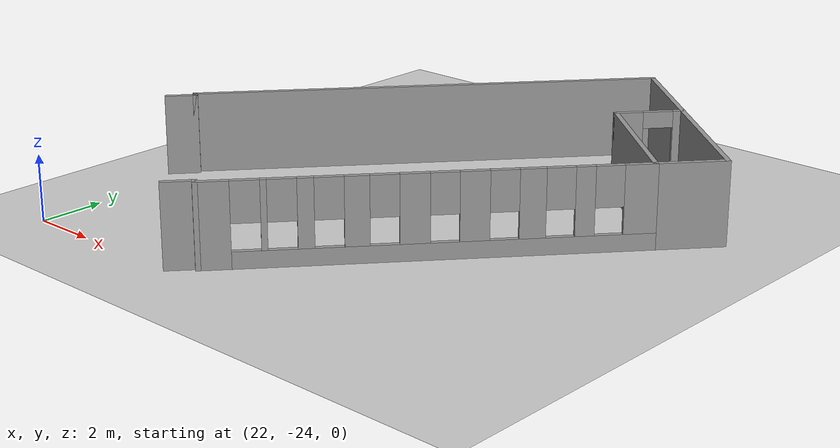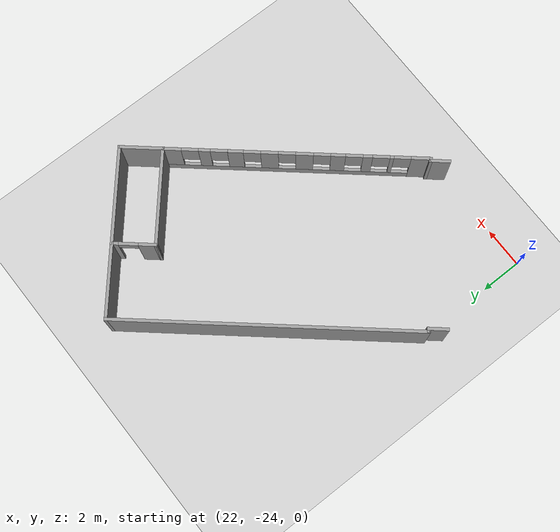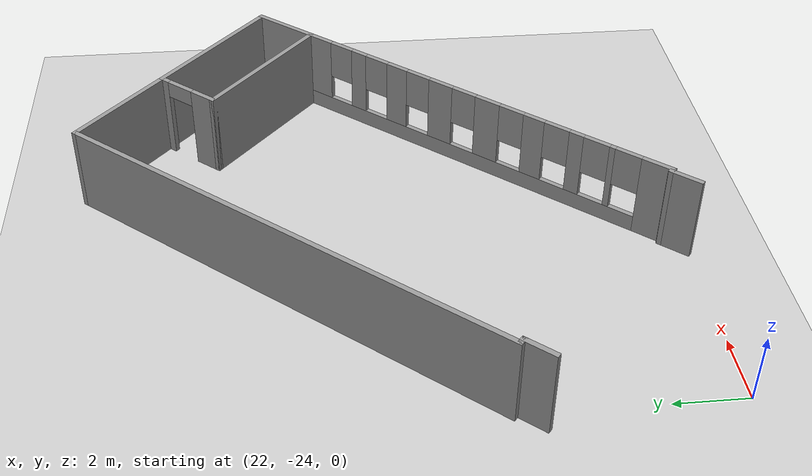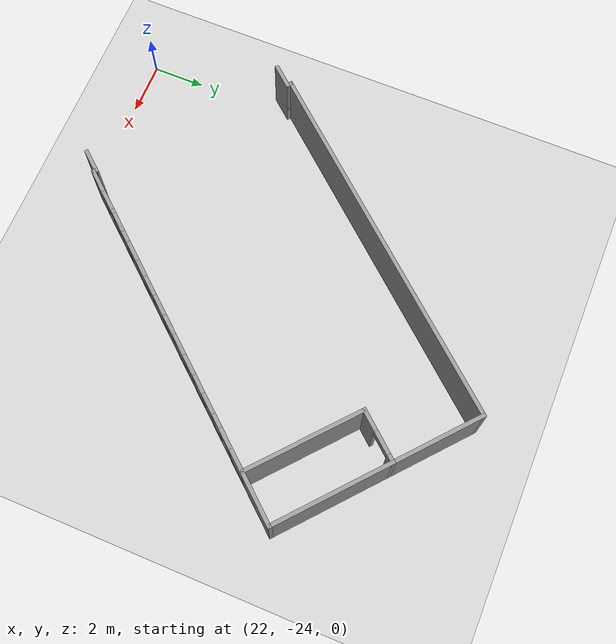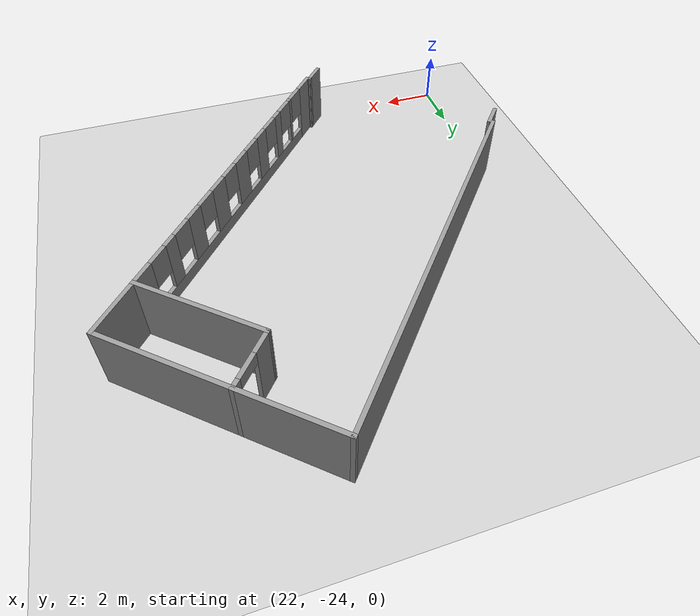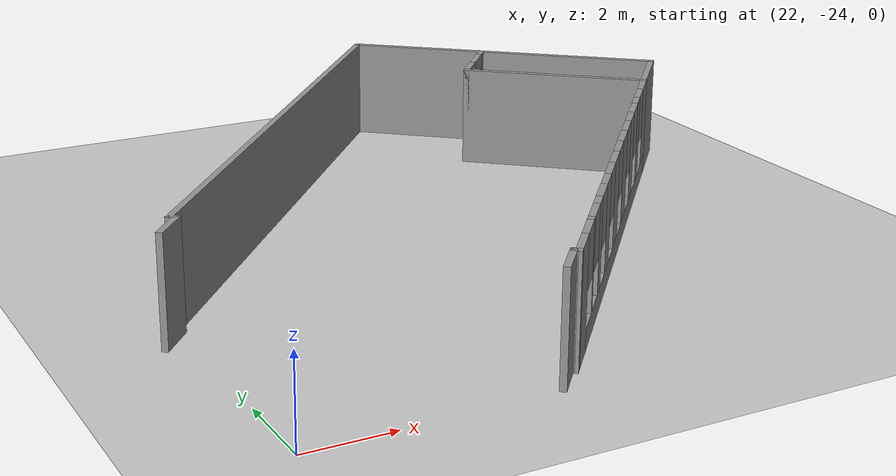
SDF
<sdf version="1.6">
 <world name="default">
  <model name="ground_plane">
   <static>1</static>
   <link name="link">
    <collision name="collision">
     <geometry><plane><normal>0 0 1</normal><size>100 100</size></plane></geometry>
     <surface>
      <contact><collide_bitmask>65535</collide_bitmask></contact>
      <friction><ode><mu>100</mu><mu2>50</mu2></ode></friction>
     </surface>
    </collision>
    <visual name="visual">
     <cast_shadows>0</cast_shadows>
     <geometry><plane><normal>0 0 1</normal><size>100 100</size></plane></geometry>
     <material>
      <script><uri>file://media/materials/scripts/gazebo.material</uri><name>Gazebo/Grey</name></script>
     </material>
    </visual>
   </link>
  </model>
  <model name="1801_new">
   <link name="Wall_23">
    <pose>3.9053 7.17484 0 0 0 -1.5708</pose>
    <visual name="Wall_23_Visual">
     <pose>0 0 1.25 0 -0 0</pose>
     <geometry><box><size>1 0.15 2.5</size></box></geometry>
     <material>
      <script><uri>file://media/materials/scripts/gazebo.material</uri><name>Gazebo/Grey</name></script>
      <ambient>1 1 1 1</ambient>
     </material>
     <meta><layer>0</layer></meta>
    </visual>
    <collision name="Wall_23_Collision">
     <pose>0 0 1.25 0 -0 0</pose>
     <geometry><box><size>1 0.15 2.5</size></box></geometry>
     <surface>
      <friction>
       <ode><mu>1</mu><mu2>1</mu2><fdir1>0 0 0</fdir1><slip1>0</slip1><slip2>0</slip2></ode>
       <torsional>
        <coefficient>1</coefficient>
        <patch_radius>0</patch_radius>
        <surface_radius>0</surface_radius>
        <use_patch_radius>1</use_patch_radius>
        <ode><slip>0</slip></ode>
       </torsional>
      </friction>
      <bounce><restitution_coefficient>0</restitution_coefficient><threshold>1e+06</threshold></bounce>
      <contact>
       <collide_without_contact>0</collide_without_contact>
       <collide_without_contact_bitmask>1</collide_without_contact_bitmask>
       <collide_bitmask>1</collide_bitmask>
       <ode>
        <soft_cfm>0</soft_cfm>
        <soft_erp>0.2</soft_erp>
        <kp>1e+13</kp>
        <kd>1</kd>
        <max_vel>0.01</max_vel>
        <min_depth>0</min_depth>
       </ode>
       <bullet>
        <split_impulse>1</split_impulse>
        <split_impulse_penetration_threshold>-0.01</split_impulse_penetration_threshold>
        <soft_cfm>0</soft_cfm>
        <soft_erp>0.2</soft_erp>
        <kp>1e+13</kp>
        <kd>1</kd>
       </bullet>
      </contact>
     </surface>
    </collision>
   </link>
   <link name="Wall_25">
    <pose>3.9553 6.74984 0 0 -0 0</pose>
    <visual name="Wall_25_Visual">
     <pose>0 0 1.25 0 -0 0</pose>
     <geometry><box><size>0.25 0.15 2.5</size></box></geometry>
     <material>
      <script><uri>file://media/materials/scripts/gazebo.material</uri><name>Gazebo/Grey</name></script>
      <ambient>1 1 1 1</ambient>
     </material>
     <meta><layer>0</layer></meta>
    </visual>
    <collision name="Wall_25_Collision">
     <pose>0 0 1.25 0 -0 0</pose>
     <geometry><box><size>0.25 0.15 2.5</size></box></geometry>
     <surface>
      <friction>
       <ode><mu>1</mu><mu2>1</mu2><fdir1>0 0 0</fdir1><slip1>0</slip1><slip2>0</slip2></ode>
       <torsional>
        <coefficient>1</coefficient>
        <patch_radius>0</patch_radius>
        <surface_radius>0</surface_radius>
        <use_patch_radius>1</use_patch_radius>
        <ode><slip>0</slip></ode>
       </torsional>
      </friction>
      <bounce><restitution_coefficient>0</restitution_coefficient><threshold>1e+06</threshold></bounce>
      <contact>
       <collide_without_contact>0</collide_without_contact>
       <collide_without_contact_bitmask>1</collide_without_contact_bitmask>
       <collide_bitmask>1</collide_bitmask>
       <ode>
        <soft_cfm>0</soft_cfm>
        <soft_erp>0.2</soft_erp>
        <kp>1e+13</kp>
        <kd>1</kd>
        <max_vel>0.01</max_vel>
        <min_depth>0</min_depth>
       </ode>
       <bullet>
        <split_impulse>1</split_impulse>
        <split_impulse_penetration_threshold>-0.01</split_impulse_penetration_threshold>
        <soft_cfm>0</soft_cfm>
        <soft_erp>0.2</soft_erp>
        <kp>1e+13</kp>
        <kd>1</kd>
       </bullet>
      </contact>
     </surface>
    </collision>
   </link>
   <link name="Wall_27">
    <pose>-3.9447 7.17484 0 0 0 -1.5708</pose>
    <visual name="Wall_27_Visual">
     <pose>0 0 1.25 0 -0 0</pose>
     <geometry><box><size>1 0.15 2.5</size></box></geometry>
     <material>
      <script><uri>file://media/materials/scripts/gazebo.material</uri><name>Gazebo/Grey</name></script>
      <ambient>1 1 1 1</ambient>
     </material>
     <meta><layer>0</layer></meta>
    </visual>
    <collision name="Wall_27_Collision">
     <pose>0 0 1.25 0 -0 0</pose>
     <geometry><box><size>1 0.15 2.5</size></box></geometry>
     <surface>
      <friction>
       <ode><mu>1</mu><mu2>1</mu2><fdir1>0 0 0</fdir1><slip1>0</slip1><slip2>0</slip2></ode>
       <torsional>
        <coefficient>1</coefficient>
        <patch_radius>0</patch_radius>
        <surface_radius>0</surface_radius>
        <use_patch_radius>1</use_patch_radius>
        <ode><slip>0</slip></ode>
       </torsional>
      </friction>
      <bounce><restitution_coefficient>0</restitution_coefficient><threshold>1e+06</threshold></bounce>
      <contact>
       <collide_without_contact>0</collide_without_contact>
       <collide_without_contact_bitmask>1</collide_without_contact_bitmask>
       <collide_bitmask>1</collide_bitmask>
       <ode>
        <soft_cfm>0</soft_cfm>
        <soft_erp>0.2</soft_erp>
        <kp>1e+13</kp>
        <kd>1</kd>
        <max_vel>0.01</max_vel>
        <min_depth>0</min_depth>
       </ode>
       <bullet>
        <split_impulse>1</split_impulse>
        <split_impulse_penetration_threshold>-0.01</split_impulse_penetration_threshold>
        <soft_cfm>0</soft_cfm>
        <soft_erp>0.2</soft_erp>
        <kp>1e+13</kp>
        <kd>1</kd>
       </bullet>
      </contact>
     </surface>
    </collision>
   </link>
   <link name="Wall_28">
    <pose>-3.99448 6.75002 0 0 -0 3.13811</pose>
    <visual name="Wall_28_Visual">
     <pose>0 0 1.25 0 -0 0</pose>
     <geometry><box><size>0.25 0.15 2.5</size></box></geometry>
     <material>
      <script><uri>file://media/materials/scripts/gazebo.material</uri><name>Gazebo/Grey</name></script>
      <ambient>1 1 1 1</ambient>
     </material>
     <meta><layer>0</layer></meta>
    </visual>
    <collision name="Wall_28_Collision">
     <pose>0 0 1.25 0 -0 0</pose>
     <geometry><box><size>0.25 0.15 2.5</size></box></geometry>
     <surface>
      <friction>
       <ode><mu>1</mu><mu2>1</mu2><fdir1>0 0 0</fdir1><slip1>0</slip1><slip2>0</slip2></ode>
       <torsional>
        <coefficient>1</coefficient>
        <patch_radius>0</patch_radius>
        <surface_radius>0</surface_radius>
        <use_patch_radius>1</use_patch_radius>
        <ode><slip>0</slip></ode>
       </torsional>
      </friction>
      <bounce><restitution_coefficient>0</restitution_coefficient><threshold>1e+06</threshold></bounce>
      <contact>
       <collide_without_contact>0</collide_without_contact>
       <collide_without_contact_bitmask>1</collide_without_contact_bitmask>
       <collide_bitmask>1</collide_bitmask>
       <ode>
        <soft_cfm>0</soft_cfm>
        <soft_erp>0.2</soft_erp>
        <kp>1e+13</kp>
        <kd>1</kd>
        <max_vel>0.01</max_vel>
        <min_depth>0</min_depth>
       </ode>
       <bullet>
        <split_impulse>1</split_impulse>
        <split_impulse_penetration_threshold>-0.01</split_impulse_penetration_threshold>
        <soft_cfm>0</soft_cfm>
        <soft_erp>0.2</soft_erp>
        <kp>1e+13</kp>
        <kd>1</kd>
       </bullet>
      </contact>
     </surface>
    </collision>
   </link>
   <link name="Wall_29">
    <pose>-4.04426 0.575187 0 0 0 -1.5708</pose>
    <visual name="Wall_29_Visual_0">
     <pose>-5.76562 0 1.25 0 -0 0</pose>
     <geometry><box><size>0.968761 0.15 2.5</size></box></geometry>
     <material>
      <script><uri>file://media/materials/scripts/gazebo.material</uri><name>Gazebo/Grey</name></script>
      <ambient>1 1 1 1</ambient>
     </material>
     <meta><layer>0</layer></meta>
    </visual>
    <visual name="Wall_29_Visual_1">
     <pose>0.48438 0 0.25 0 -0 0</pose>
     <geometry><box><size>11.5312 0.15 0.5</size></box></geometry>
     <material>
      <script><uri>file://media/materials/scripts/gazebo.material</uri><name>Gazebo/Grey</name></script>
      <ambient>1 1 1 1</ambient>
     </material>
     <meta><layer>0</layer></meta>
    </visual>
    <visual name="Wall_29_Visual_2">
     <pose>-4.3955 0 1.5 0 -0 0</pose>
     <geometry><box><size>0.171486 0.15 2</size></box></geometry>
     <material>
      <script><uri>file://media/materials/scripts/gazebo.material</uri><name>Gazebo/Grey</name></script>
      <ambient>1 1 1 1</ambient>
     </material>
     <meta><layer>0</layer></meta>
    </visual>
    <visual name="Wall_29_Visual_3">
     <pose>-3.28523 0 1.5 0 -0 0</pose>
     <geometry><box><size>0.449053 0.15 2</size></box></geometry>
     <material>
      <script><uri>file://media/materials/scripts/gazebo.material</uri><name>Gazebo/Grey</name></script>
      <ambient>1 1 1 1</ambient>
     </material>
     <meta><layer>0</layer></meta>
    </visual>
    <visual name="Wall_29_Visual_4">
     <pose>-1.92052 0 1.5 0 -0 0</pose>
     <geometry><box><size>0.680359 0.15 2</size></box></geometry>
     <material>
      <script><uri>file://media/materials/scripts/gazebo.material</uri><name>Gazebo/Grey</name></script>
      <ambient>1 1 1 1</ambient>
     </material>
     <meta><layer>0</layer></meta>
    </visual>
    <visual name="Wall_29_Visual_5">
     <pose>-0.37077 0 1.5 0 -0 0</pose>
     <geometry><box><size>0.819143 0.15 2</size></box></geometry>
     <material>
      <script><uri>file://media/materials/scripts/gazebo.material</uri><name>Gazebo/Grey</name></script>
      <ambient>1 1 1 1</ambient>
     </material>
     <meta><layer>0</layer></meta>
    </visual>
    <visual name="Wall_29_Visual_6">
     <pose>1.24837 0 1.5 0 -0 0</pose>
     <geometry><box><size>0.819143 0.15 2</size></box></geometry>
     <material>
      <script><uri>file://media/materials/scripts/gazebo.material</uri><name>Gazebo/Grey</name></script>
      <ambient>1 1 1 1</ambient>
     </material>
     <meta><layer>0</layer></meta>
    </visual>
    <visual name="Wall_29_Visual_7">
     <pose>2.82125 0 1.5 0 -0 0</pose>
     <geometry><box><size>0.72662 0.15 2</size></box></geometry>
     <material>
      <script><uri>file://media/materials/scripts/gazebo.material</uri><name>Gazebo/Grey</name></script>
      <ambient>1 1 1 1</ambient>
     </material>
     <meta><layer>0</layer></meta>
    </visual>
    <visual name="Wall_29_Visual_8">
     <pose>4.25535 0 1.5 0 -0 0</pose>
     <geometry><box><size>0.541576 0.15 2</size></box></geometry>
     <material>
      <script><uri>file://media/materials/scripts/gazebo.material</uri><name>Gazebo/Grey</name></script>
      <ambient>1 1 1 1</ambient>
     </material>
     <meta><layer>0</layer></meta>
    </visual>
    <visual name="Wall_29_Visual_9">
     <pose>5.78807 0 1.5 0 -0 0</pose>
     <geometry><box><size>0.923861 0.15 2</size></box></geometry>
     <material>
      <script><uri>file://media/materials/scripts/gazebo.material</uri><name>Gazebo/Grey</name></script>
      <ambient>1 1 1 1</ambient>
     </material>
     <meta><layer>0</layer></meta>
    </visual>
    <visual name="Wall_29_Visual_10">
     <pose>-4.88124 0 1.9 0 -0 0</pose>
     <geometry><box><size>0.8 0.15 1.2</size></box></geometry>
     <material>
      <script><uri>file://media/materials/scripts/gazebo.material</uri><name>Gazebo/Grey</name></script>
      <ambient>1 1 1 1</ambient>
     </material>
     <meta><layer>0</layer></meta>
    </visual>
    <visual name="Wall_29_Visual_11">
     <pose>-3.90975 0 1.9 0 -0 0</pose>
     <geometry><box><size>0.8 0.15 1.2</size></box></geometry>
     <material>
      <script><uri>file://media/materials/scripts/gazebo.material</uri><name>Gazebo/Grey</name></script>
      <ambient>1 1 1 1</ambient>
     </material>
     <meta><layer>0</layer></meta>
    </visual>
    <visual name="Wall_29_Visual_12">
     <pose>-2.6607 0 1.9 0 -0 0</pose>
     <geometry><box><size>0.8 0.15 1.2</size></box></geometry>
     <material>
      <script><uri>file://media/materials/scripts/gazebo.material</uri><name>Gazebo/Grey</name></script>
      <ambient>1 1 1 1</ambient>
     </material>
     <meta><layer>0</layer></meta>
    </visual>
    <visual name="Wall_29_Visual_13">
     <pose>-1.18034 0 1.9 0 -0 0</pose>
     <geometry><box><size>0.8 0.15 1.2</size></box></geometry>
     <material>
      <script><uri>file://media/materials/scripts/gazebo.material</uri><name>Gazebo/Grey</name></script>
      <ambient>1 1 1 1</ambient>
     </material>
     <meta><layer>0</layer></meta>
    </visual>
    <visual name="Wall_29_Visual_14">
     <pose>0.438801 0 1.9 0 -0 0</pose>
     <geometry><box><size>0.8 0.15 1.2</size></box></geometry>
     <material>
      <script><uri>file://media/materials/scripts/gazebo.material</uri><name>Gazebo/Grey</name></script>
      <ambient>1 1 1 1</ambient>
     </material>
     <meta><layer>0</layer></meta>
    </visual>
    <visual name="Wall_29_Visual_15">
     <pose>2.05794 0 1.9 0 -0 0</pose>
     <geometry><box><size>0.8 0.15 1.2</size></box></geometry>
     <material>
      <script><uri>file://media/materials/scripts/gazebo.material</uri><name>Gazebo/Grey</name></script>
      <ambient>1 1 1 1</ambient>
     </material>
     <meta><layer>0</layer></meta>
    </visual>
    <visual name="Wall_29_Visual_16">
     <pose>3.58456 0 1.9 0 -0 0</pose>
     <geometry><box><size>0.8 0.15 1.2</size></box></geometry>
     <material>
      <script><uri>file://media/materials/scripts/gazebo.material</uri><name>Gazebo/Grey</name></script>
      <ambient>1 1 1 1</ambient>
     </material>
     <meta><layer>0</layer></meta>
    </visual>
    <visual name="Wall_29_Visual_17">
     <pose>4.92614 0 1.9 0 -0 0</pose>
     <geometry><box><size>0.8 0.15 1.2</size></box></geometry>
     <material>
      <script><uri>file://media/materials/scripts/gazebo.material</uri><name>Gazebo/Grey</name></script>
      <ambient>1 1 1 1</ambient>
     </material>
     <meta><layer>0</layer></meta>
    </visual>
    <collision name="Wall_29_Collision_0">
     <pose>-5.76562 0 1.25 0 -0 0</pose>
     <geometry><box><size>0.968761 0.15 2.5</size></box></geometry>
     <surface>
      <friction>
       <ode><mu>1</mu><mu2>1</mu2><fdir1>0 0 0</fdir1><slip1>0</slip1><slip2>0</slip2></ode>
       <torsional>
        <coefficient>1</coefficient>
        <patch_radius>0</patch_radius>
        <surface_radius>0</surface_radius>
        <use_patch_radius>1</use_patch_radius>
        <ode><slip>0</slip></ode>
       </torsional>
      </friction>
      <bounce><restitution_coefficient>0</restitution_coefficient><threshold>1e+06</threshold></bounce>
      <contact>
       <collide_without_contact>0</collide_without_contact>
       <collide_without_contact_bitmask>1</collide_without_contact_bitmask>
       <collide_bitmask>1</collide_bitmask>
       <ode>
        <soft_cfm>0</soft_cfm>
        <soft_erp>0.2</soft_erp>
        <kp>1e+13</kp>
        <kd>1</kd>
        <max_vel>0.01</max_vel>
        <min_depth>0</min_depth>
       </ode>
       <bullet>
        <split_impulse>1</split_impulse>
        <split_impulse_penetration_threshold>-0.01</split_impulse_penetration_threshold>
        <soft_cfm>0</soft_cfm>
        <soft_erp>0.2</soft_erp>
        <kp>1e+13</kp>
        <kd>1</kd>
       </bullet>
      </contact>
     </surface>
    </collision>
    <collision name="Wall_29_Collision_1">
     <pose>0.48438 0 0.25 0 -0 0</pose>
     <geometry><box><size>11.5312 0.15 0.5</size></box></geometry>
     <surface>
      <friction>
       <ode><mu>1</mu><mu2>1</mu2><fdir1>0 0 0</fdir1><slip1>0</slip1><slip2>0</slip2></ode>
       <torsional>
        <coefficient>1</coefficient>
        <patch_radius>0</patch_radius>
        <surface_radius>0</surface_radius>
        <use_patch_radius>1</use_patch_radius>
        <ode><slip>0</slip></ode>
       </torsional>
      </friction>
      <bounce><restitution_coefficient>0</restitution_coefficient><threshold>1e+06</threshold></bounce>
      <contact>
       <collide_without_contact>0</collide_without_contact>
       <collide_without_contact_bitmask>1</collide_without_contact_bitmask>
       <collide_bitmask>1</collide_bitmask>
       <ode>
        <soft_cfm>0</soft_cfm>
        <soft_erp>0.2</soft_erp>
        <kp>1e+13</kp>
        <kd>1</kd>
        <max_vel>0.01</max_vel>
        <min_depth>0</min_depth>
       </ode>
       <bullet>
        <split_impulse>1</split_impulse>
        <split_impulse_penetration_threshold>-0.01</split_impulse_penetration_threshold>
        <soft_cfm>0</soft_cfm>
        <soft_erp>0.2</soft_erp>
        <kp>1e+13</kp>
        <kd>1</kd>
       </bullet>
      </contact>
     </surface>
    </collision>
    <collision name="Wall_29_Collision_2">
     <pose>-4.3955 0 1.5 0 -0 0</pose>
     <geometry><box><size>0.171486 0.15 2</size></box></geometry>
     <surface>
      <friction>
       <ode><mu>1</mu><mu2>1</mu2><fdir1>0 0 0</fdir1><slip1>0</slip1><slip2>0</slip2></ode>
       <torsional>
        <coefficient>1</coefficient>
        <patch_radius>0</patch_radius>
        <surface_radius>0</surface_radius>
        <use_patch_radius>1</use_patch_radius>
        <ode><slip>0</slip></ode>
       </torsional>
      </friction>
      <bounce><restitution_coefficient>0</restitution_coefficient><threshold>1e+06</threshold></bounce>
      <contact>
       <collide_without_contact>0</collide_without_contact>
       <collide_without_contact_bitmask>1</collide_without_contact_bitmask>
       <collide_bitmask>1</collide_bitmask>
       <ode>
        <soft_cfm>0</soft_cfm>
        <soft_erp>0.2</soft_erp>
        <kp>1e+13</kp>
        <kd>1</kd>
        <max_vel>0.01</max_vel>
        <min_depth>0</min_depth>
       </ode>
       <bullet>
        <split_impulse>1</split_impulse>
        <split_impulse_penetration_threshold>-0.01</split_impulse_penetration_threshold>
        <soft_cfm>0</soft_cfm>
        <soft_erp>0.2</soft_erp>
        <kp>1e+13</kp>
        <kd>1</kd>
       </bullet>
      </contact>
     </surface>
    </collision>
    <collision name="Wall_29_Collision_3">
     <pose>-3.28523 0 1.5 0 -0 0</pose>
     <geometry><box><size>0.449053 0.15 2</size></box></geometry>
     <surface>
      <friction>
       <ode><mu>1</mu><mu2>1</mu2><fdir1>0 0 0</fdir1><slip1>0</slip1><slip2>0</slip2></ode>
       <torsional>
        <coefficient>1</coefficient>
        <patch_radius>0</patch_radius>
        <surface_radius>0</surface_radius>
        <use_patch_radius>1</use_patch_radius>
        <ode><slip>0</slip></ode>
       </torsional>
      </friction>
      <bounce><restitution_coefficient>0</restitution_coefficient><threshold>1e+06</threshold></bounce>
      <contact>
       <collide_without_contact>0</collide_without_contact>
       <collide_without_contact_bitmask>1</collide_without_contact_bitmask>
       <collide_bitmask>1</collide_bitmask>
       <ode>
        <soft_cfm>0</soft_cfm>
        <soft_erp>0.2</soft_erp>
        <kp>1e+13</kp>
        <kd>1</kd>
        <max_vel>0.01</max_vel>
        <min_depth>0</min_depth>
       </ode>
       <bullet>
        <split_impulse>1</split_impulse>
        <split_impulse_penetration_threshold>-0.01</split_impulse_penetration_threshold>
        <soft_cfm>0</soft_cfm>
        <soft_erp>0.2</soft_erp>
        <kp>1e+13</kp>
        <kd>1</kd>
       </bullet>
      </contact>
     </surface>
    </collision>
    <collision name="Wall_29_Collision_4">
     <pose>-1.92052 0 1.5 0 -0 0</pose>
     <geometry><box><size>0.680359 0.15 2</size></box></geometry>
     <surface>
      <friction>
       <ode><mu>1</mu><mu2>1</mu2><fdir1>0 0 0</fdir1><slip1>0</slip1><slip2>0</slip2></ode>
       <torsional>
        <coefficient>1</coefficient>
        <patch_radius>0</patch_radius>
        <surface_radius>0</surface_radius>
        <use_patch_radius>1</use_patch_radius>
        <ode><slip>0</slip></ode>
       </torsional>
      </friction>
      <bounce><restitution_coefficient>0</restitution_coefficient><threshold>1e+06</threshold></bounce>
      <contact>
       <collide_without_contact>0</collide_without_contact>
       <collide_without_contact_bitmask>1</collide_without_contact_bitmask>
       <collide_bitmask>1</collide_bitmask>
       <ode>
        <soft_cfm>0</soft_cfm>
        <soft_erp>0.2</soft_erp>
        <kp>1e+13</kp>
        <kd>1</kd>
        <max_vel>0.01</max_vel>
        <min_depth>0</min_depth>
       </ode>
       <bullet>
        <split_impulse>1</split_impulse>
        <split_impulse_penetration_threshold>-0.01</split_impulse_penetration_threshold>
        <soft_cfm>0</soft_cfm>
        <soft_erp>0.2</soft_erp>
        <kp>1e+13</kp>
        <kd>1</kd>
       </bullet>
      </contact>
     </surface>
    </collision>
    <collision name="Wall_29_Collision_5">
     <pose>-0.37077 0 1.5 0 -0 0</pose>
     <geometry><box><size>0.819143 0.15 2</size></box></geometry>
     <surface>
      <friction>
       <ode><mu>1</mu><mu2>1</mu2><fdir1>0 0 0</fdir1><slip1>0</slip1><slip2>0</slip2></ode>
       <torsional>
        <coefficient>1</coefficient>
        <patch_radius>0</patch_radius>
        <surface_radius>0</surface_radius>
        <use_patch_radius>1</use_patch_radius>
        <ode><slip>0</slip></ode>
       </torsional>
      </friction>
      <bounce><restitution_coefficient>0</restitution_coefficient><threshold>1e+06</threshold></bounce>
      <contact>
       <collide_without_contact>0</collide_without_contact>
       <collide_without_contact_bitmask>1</collide_without_contact_bitmask>
       <collide_bitmask>1</collide_bitmask>
       <ode>
        <soft_cfm>0</soft_cfm>
        <soft_erp>0.2</soft_erp>
        <kp>1e+13</kp>
        <kd>1</kd>
        <max_vel>0.01</max_vel>
        <min_depth>0</min_depth>
       </ode>
       <bullet>
        <split_impulse>1</split_impulse>
        <split_impulse_penetration_threshold>-0.01</split_impulse_penetration_threshold>
        <soft_cfm>0</soft_cfm>
        <soft_erp>0.2</soft_erp>
        <kp>1e+13</kp>
        <kd>1</kd>
       </bullet>
      </contact>
     </surface>
    </collision>
    <collision name="Wall_29_Collision_6">
     <pose>1.24837 0 1.5 0 -0 0</pose>
     <geometry><box><size>0.819143 0.15 2</size></box></geometry>
     <surface>
      <friction>
       <ode><mu>1</mu><mu2>1</mu2><fdir1>0 0 0</fdir1><slip1>0</slip1><slip2>0</slip2></ode>
       <torsional>
        <coefficient>1</coefficient>
        <patch_radius>0</patch_radius>
        <surface_radius>0</surface_radius>
        <use_patch_radius>1</use_patch_radius>
        <ode><slip>0</slip></ode>
       </torsional>
      </friction>
      <bounce><restitution_coefficient>0</restitution_coefficient><threshold>1e+06</threshold></bounce>
      <contact>
       <collide_without_contact>0</collide_without_contact>
       <collide_without_contact_bitmask>1</collide_without_contact_bitmask>
       <collide_bitmask>1</collide_bitmask>
       <ode>
        <soft_cfm>0</soft_cfm>
        <soft_erp>0.2</soft_erp>
        <kp>1e+13</kp>
        <kd>1</kd>
        <max_vel>0.01</max_vel>
        <min_depth>0</min_depth>
       </ode>
       <bullet>
        <split_impulse>1</split_impulse>
        <split_impulse_penetration_threshold>-0.01</split_impulse_penetration_threshold>
        <soft_cfm>0</soft_cfm>
        <soft_erp>0.2</soft_erp>
        <kp>1e+13</kp>
        <kd>1</kd>
       </bullet>
      </contact>
     </surface>
    </collision>
    <collision name="Wall_29_Collision_7">
     <pose>2.82125 0 1.5 0 -0 0</pose>
     <geometry><box><size>0.72662 0.15 2</size></box></geometry>
     <surface>
      <friction>
       <ode><mu>1</mu><mu2>1</mu2><fdir1>0 0 0</fdir1><slip1>0</slip1><slip2>0</slip2></ode>
       <torsional>
        <coefficient>1</coefficient>
        <patch_radius>0</patch_radius>
        <surface_radius>0</surface_radius>
        <use_patch_radius>1</use_patch_radius>
        <ode><slip>0</slip></ode>
       </torsional>
      </friction>
      <bounce><restitution_coefficient>0</restitution_coefficient><threshold>1e+06</threshold></bounce>
      <contact>
       <collide_without_contact>0</collide_without_contact>
       <collide_without_contact_bitmask>1</collide_without_contact_bitmask>
       <collide_bitmask>1</collide_bitmask>
       <ode>
        <soft_cfm>0</soft_cfm>
        <soft_erp>0.2</soft_erp>
        <kp>1e+13</kp>
        <kd>1</kd>
        <max_vel>0.01</max_vel>
        <min_depth>0</min_depth>
       </ode>
       <bullet>
        <split_impulse>1</split_impulse>
        <split_impulse_penetration_threshold>-0.01</split_impulse_penetration_threshold>
        <soft_cfm>0</soft_cfm>
        <soft_erp>0.2</soft_erp>
        <kp>1e+13</kp>
        <kd>1</kd>
       </bullet>
      </contact>
     </surface>
    </collision>
    <collision name="Wall_29_Collision_8">
     <pose>4.25535 0 1.5 0 -0 0</pose>
     <geometry><box><size>0.541576 0.15 2</size></box></geometry>
     <surface>
      <friction>
       <ode><mu>1</mu><mu2>1</mu2><fdir1>0 0 0</fdir1><slip1>0</slip1><slip2>0</slip2></ode>
       <torsional>
        <coefficient>1</coefficient>
        <patch_radius>0</patch_radius>
        <surface_radius>0</surface_radius>
        <use_patch_radius>1</use_patch_radius>
        <ode><slip>0</slip></ode>
       </torsional>
      </friction>
      <bounce><restitution_coefficient>0</restitution_coefficient><threshold>1e+06</threshold></bounce>
      <contact>
       <collide_without_contact>0</collide_without_contact>
       <collide_without_contact_bitmask>1</collide_without_contact_bitmask>
       <collide_bitmask>1</collide_bitmask>
       <ode>
        <soft_cfm>0</soft_cfm>
        <soft_erp>0.2</soft_erp>
        <kp>1e+13</kp>
        <kd>1</kd>
        <max_vel>0.01</max_vel>
        <min_depth>0</min_depth>
       </ode>
       <bullet>
        <split_impulse>1</split_impulse>
        <split_impulse_penetration_threshold>-0.01</split_impulse_penetration_threshold>
        <soft_cfm>0</soft_cfm>
        <soft_erp>0.2</soft_erp>
        <kp>1e+13</kp>
        <kd>1</kd>
       </bullet>
      </contact>
     </surface>
    </collision>
    <collision name="Wall_29_Collision_9">
     <pose>5.78807 0 1.5 0 -0 0</pose>
     <geometry><box><size>0.923861 0.15 2</size></box></geometry>
     <surface>
      <friction>
       <ode><mu>1</mu><mu2>1</mu2><fdir1>0 0 0</fdir1><slip1>0</slip1><slip2>0</slip2></ode>
       <torsional>
        <coefficient>1</coefficient>
        <patch_radius>0</patch_radius>
        <surface_radius>0</surface_radius>
        <use_patch_radius>1</use_patch_radius>
        <ode><slip>0</slip></ode>
       </torsional>
      </friction>
      <bounce><restitution_coefficient>0</restitution_coefficient><threshold>1e+06</threshold></bounce>
      <contact>
       <collide_without_contact>0</collide_without_contact>
       <collide_without_contact_bitmask>1</collide_without_contact_bitmask>
       <collide_bitmask>1</collide_bitmask>
       <ode>
        <soft_cfm>0</soft_cfm>
        <soft_erp>0.2</soft_erp>
        <kp>1e+13</kp>
        <kd>1</kd>
        <max_vel>0.01</max_vel>
        <min_depth>0</min_depth>
       </ode>
       <bullet>
        <split_impulse>1</split_impulse>
        <split_impulse_penetration_threshold>-0.01</split_impulse_penetration_threshold>
        <soft_cfm>0</soft_cfm>
        <soft_erp>0.2</soft_erp>
        <kp>1e+13</kp>
        <kd>1</kd>
       </bullet>
      </contact>
     </surface>
    </collision>
    <collision name="Wall_29_Collision_10">
     <pose>-4.88124 0 1.9 0 -0 0</pose>
     <geometry><box><size>0.8 0.15 1.2</size></box></geometry>
     <surface>
      <friction>
       <ode><mu>1</mu><mu2>1</mu2><fdir1>0 0 0</fdir1><slip1>0</slip1><slip2>0</slip2></ode>
       <torsional>
        <coefficient>1</coefficient>
        <patch_radius>0</patch_radius>
        <surface_radius>0</surface_radius>
        <use_patch_radius>1</use_patch_radius>
        <ode><slip>0</slip></ode>
       </torsional>
      </friction>
      <bounce><restitution_coefficient>0</restitution_coefficient><threshold>1e+06</threshold></bounce>
      <contact>
       <collide_without_contact>0</collide_without_contact>
       <collide_without_contact_bitmask>1</collide_without_contact_bitmask>
       <collide_bitmask>1</collide_bitmask>
       <ode>
        <soft_cfm>0</soft_cfm>
        <soft_erp>0.2</soft_erp>
        <kp>1e+13</kp>
        <kd>1</kd>
        <max_vel>0.01</max_vel>
        <min_depth>0</min_depth>
       </ode>
       <bullet>
        <split_impulse>1</split_impulse>
        <split_impulse_penetration_threshold>-0.01</split_impulse_penetration_threshold>
        <soft_cfm>0</soft_cfm>
        <soft_erp>0.2</soft_erp>
        <kp>1e+13</kp>
        <kd>1</kd>
       </bullet>
      </contact>
     </surface>
    </collision>
    <collision name="Wall_29_Collision_11">
     <pose>-3.90975 0 1.9 0 -0 0</pose>
     <geometry><box><size>0.8 0.15 1.2</size></box></geometry>
     <surface>
      <friction>
       <ode><mu>1</mu><mu2>1</mu2><fdir1>0 0 0</fdir1><slip1>0</slip1><slip2>0</slip2></ode>
       <torsional>
        <coefficient>1</coefficient>
        <patch_radius>0</patch_radius>
        <surface_radius>0</surface_radius>
        <use_patch_radius>1</use_patch_radius>
        <ode><slip>0</slip></ode>
       </torsional>
      </friction>
      <bounce><restitution_coefficient>0</restitution_coefficient><threshold>1e+06</threshold></bounce>
      <contact>
       <collide_without_contact>0</collide_without_contact>
       <collide_without_contact_bitmask>1</collide_without_contact_bitmask>
       <collide_bitmask>1</collide_bitmask>
       <ode>
        <soft_cfm>0</soft_cfm>
        <soft_erp>0.2</soft_erp>
        <kp>1e+13</kp>
        <kd>1</kd>
        <max_vel>0.01</max_vel>
        <min_depth>0</min_depth>
       </ode>
       <bullet>
        <split_impulse>1</split_impulse>
        <split_impulse_penetration_threshold>-0.01</split_impulse_penetration_threshold>
        <soft_cfm>0</soft_cfm>
        <soft_erp>0.2</soft_erp>
        <kp>1e+13</kp>
        <kd>1</kd>
       </bullet>
      </contact>
     </surface>
    </collision>
    <collision name="Wall_29_Collision_12">
     <pose>-2.6607 0 1.9 0 -0 0</pose>
     <geometry><box><size>0.8 0.15 1.2</size></box></geometry>
     <surface>
      <friction>
       <ode><mu>1</mu><mu2>1</mu2><fdir1>0 0 0</fdir1><slip1>0</slip1><slip2>0</slip2></ode>
       <torsional>
        <coefficient>1</coefficient>
        <patch_radius>0</patch_radius>
        <surface_radius>0</surface_radius>
        <use_patch_radius>1</use_patch_radius>
        <ode><slip>0</slip></ode>
       </torsional>
      </friction>
      <bounce><restitution_coefficient>0</restitution_coefficient><threshold>1e+06</threshold></bounce>
      <contact>
       <collide_without_contact>0</collide_without_contact>
       <collide_without_contact_bitmask>1</collide_without_contact_bitmask>
       <collide_bitmask>1</collide_bitmask>
       <ode>
        <soft_cfm>0</soft_cfm>
        <soft_erp>0.2</soft_erp>
        <kp>1e+13</kp>
        <kd>1</kd>
        <max_vel>0.01</max_vel>
        <min_depth>0</min_depth>
       </ode>
       <bullet>
        <split_impulse>1</split_impulse>
        <split_impulse_penetration_threshold>-0.01</split_impulse_penetration_threshold>
        <soft_cfm>0</soft_cfm>
        <soft_erp>0.2</soft_erp>
        <kp>1e+13</kp>
        <kd>1</kd>
       </bullet>
      </contact>
     </surface>
    </collision>
    <collision name="Wall_29_Collision_13">
     <pose>-1.18034 0 1.9 0 -0 0</pose>
     <geometry><box><size>0.8 0.15 1.2</size></box></geometry>
     <surface>
      <friction>
       <ode><mu>1</mu><mu2>1</mu2><fdir1>0 0 0</fdir1><slip1>0</slip1><slip2>0</slip2></ode>
       <torsional>
        <coefficient>1</coefficient>
        <patch_radius>0</patch_radius>
        <surface_radius>0</surface_radius>
        <use_patch_radius>1</use_patch_radius>
        <ode><slip>0</slip></ode>
       </torsional>
      </friction>
      <bounce><restitution_coefficient>0</restitution_coefficient><threshold>1e+06</threshold></bounce>
      <contact>
       <collide_without_contact>0</collide_without_contact>
       <collide_without_contact_bitmask>1</collide_without_contact_bitmask>
       <collide_bitmask>1</collide_bitmask>
       <ode>
        <soft_cfm>0</soft_cfm>
        <soft_erp>0.2</soft_erp>
        <kp>1e+13</kp>
        <kd>1</kd>
        <max_vel>0.01</max_vel>
        <min_depth>0</min_depth>
       </ode>
       <bullet>
        <split_impulse>1</split_impulse>
        <split_impulse_penetration_threshold>-0.01</split_impulse_penetration_threshold>
        <soft_cfm>0</soft_cfm>
        <soft_erp>0.2</soft_erp>
        <kp>1e+13</kp>
        <kd>1</kd>
       </bullet>
      </contact>
     </surface>
    </collision>
    <collision name="Wall_29_Collision_14">
     <pose>0.438801 0 1.9 0 -0 0</pose>
     <geometry><box><size>0.8 0.15 1.2</size></box></geometry>
     <surface>
      <friction>
       <ode><mu>1</mu><mu2>1</mu2><fdir1>0 0 0</fdir1><slip1>0</slip1><slip2>0</slip2></ode>
       <torsional>
        <coefficient>1</coefficient>
        <patch_radius>0</patch_radius>
        <surface_radius>0</surface_radius>
        <use_patch_radius>1</use_patch_radius>
        <ode><slip>0</slip></ode>
       </torsional>
      </friction>
      <bounce><restitution_coefficient>0</restitution_coefficient><threshold>1e+06</threshold></bounce>
      <contact>
       <collide_without_contact>0</collide_without_contact>
       <collide_without_contact_bitmask>1</collide_without_contact_bitmask>
       <collide_bitmask>1</collide_bitmask>
       <ode>
        <soft_cfm>0</soft_cfm>
        <soft_erp>0.2</soft_erp>
        <kp>1e+13</kp>
        <kd>1</kd>
        <max_vel>0.01</max_vel>
        <min_depth>0</min_depth>
       </ode>
       <bullet>
        <split_impulse>1</split_impulse>
        <split_impulse_penetration_threshold>-0.01</split_impulse_penetration_threshold>
        <soft_cfm>0</soft_cfm>
        <soft_erp>0.2</soft_erp>
        <kp>1e+13</kp>
        <kd>1</kd>
       </bullet>
      </contact>
     </surface>
    </collision>
    <collision name="Wall_29_Collision_15">
     <pose>2.05794 0 1.9 0 -0 0</pose>
     <geometry><box><size>0.8 0.15 1.2</size></box></geometry>
     <surface>
      <friction>
       <ode><mu>1</mu><mu2>1</mu2><fdir1>0 0 0</fdir1><slip1>0</slip1><slip2>0</slip2></ode>
       <torsional>
        <coefficient>1</coefficient>
        <patch_radius>0</patch_radius>
        <surface_radius>0</surface_radius>
        <use_patch_radius>1</use_patch_radius>
        <ode><slip>0</slip></ode>
       </torsional>
      </friction>
      <bounce><restitution_coefficient>0</restitution_coefficient><threshold>1e+06</threshold></bounce>
      <contact>
       <collide_without_contact>0</collide_without_contact>
       <collide_without_contact_bitmask>1</collide_without_contact_bitmask>
       <collide_bitmask>1</collide_bitmask>
       <ode>
        <soft_cfm>0</soft_cfm>
        <soft_erp>0.2</soft_erp>
        <kp>1e+13</kp>
        <kd>1</kd>
        <max_vel>0.01</max_vel>
        <min_depth>0</min_depth>
       </ode>
       <bullet>
        <split_impulse>1</split_impulse>
        <split_impulse_penetration_threshold>-0.01</split_impulse_penetration_threshold>
        <soft_cfm>0</soft_cfm>
        <soft_erp>0.2</soft_erp>
        <kp>1e+13</kp>
        <kd>1</kd>
       </bullet>
      </contact>
     </surface>
    </collision>
    <collision name="Wall_29_Collision_16">
     <pose>3.58456 0 1.9 0 -0 0</pose>
     <geometry><box><size>0.8 0.15 1.2</size></box></geometry>
     <surface>
      <friction>
       <ode><mu>1</mu><mu2>1</mu2><fdir1>0 0 0</fdir1><slip1>0</slip1><slip2>0</slip2></ode>
       <torsional>
        <coefficient>1</coefficient>
        <patch_radius>0</patch_radius>
        <surface_radius>0</surface_radius>
        <use_patch_radius>1</use_patch_radius>
        <ode><slip>0</slip></ode>
       </torsional>
      </friction>
      <bounce><restitution_coefficient>0</restitution_coefficient><threshold>1e+06</threshold></bounce>
      <contact>
       <collide_without_contact>0</collide_without_contact>
       <collide_without_contact_bitmask>1</collide_without_contact_bitmask>
       <collide_bitmask>1</collide_bitmask>
       <ode>
        <soft_cfm>0</soft_cfm>
        <soft_erp>0.2</soft_erp>
        <kp>1e+13</kp>
        <kd>1</kd>
        <max_vel>0.01</max_vel>
        <min_depth>0</min_depth>
       </ode>
       <bullet>
        <split_impulse>1</split_impulse>
        <split_impulse_penetration_threshold>-0.01</split_impulse_penetration_threshold>
        <soft_cfm>0</soft_cfm>
        <soft_erp>0.2</soft_erp>
        <kp>1e+13</kp>
        <kd>1</kd>
       </bullet>
      </contact>
     </surface>
    </collision>
    <collision name="Wall_29_Collision_17">
     <pose>4.92614 0 1.9 0 -0 0</pose>
     <geometry><box><size>0.8 0.15 1.2</size></box></geometry>
     <surface>
      <friction>
       <ode><mu>1</mu><mu2>1</mu2><fdir1>0 0 0</fdir1><slip1>0</slip1><slip2>0</slip2></ode>
       <torsional>
        <coefficient>1</coefficient>
        <patch_radius>0</patch_radius>
        <surface_radius>0</surface_radius>
        <use_patch_radius>1</use_patch_radius>
        <ode><slip>0</slip></ode>
       </torsional>
      </friction>
      <bounce><restitution_coefficient>0</restitution_coefficient><threshold>1e+06</threshold></bounce>
      <contact>
       <collide_without_contact>0</collide_without_contact>
       <collide_without_contact_bitmask>1</collide_without_contact_bitmask>
       <collide_bitmask>1</collide_bitmask>
       <ode>
        <soft_cfm>0</soft_cfm>
        <soft_erp>0.2</soft_erp>
        <kp>1e+13</kp>
        <kd>1</kd>
        <max_vel>0.01</max_vel>
        <min_depth>0</min_depth>
       </ode>
       <bullet>
        <split_impulse>1</split_impulse>
        <split_impulse_penetration_threshold>-0.01</split_impulse_penetration_threshold>
        <soft_cfm>0</soft_cfm>
        <soft_erp>0.2</soft_erp>
        <kp>1e+13</kp>
        <kd>1</kd>
       </bullet>
      </contact>
     </surface>
    </collision>
   </link>
   <link name="Wall_30">
    <pose>-1.74426 -5.59981 0 0 -0 0</pose>
    <visual name="Wall_30_Visual">
     <pose>0 0 1.25 0 -0 0</pose>
     <geometry><box><size>4.75 0.15 2.5</size></box></geometry>
     <material>
      <script><uri>file://media/materials/scripts/gazebo.material</uri><name>Gazebo/Grey</name></script>
      <ambient>1 1 1 1</ambient>
     </material>
     <meta><layer>0</layer></meta>
    </visual>
    <collision name="Wall_30_Collision">
     <pose>0 0 1.25 0 -0 0</pose>
     <geometry><box><size>4.75 0.15 2.5</size></box></geometry>
     <surface>
      <friction>
       <ode><mu>1</mu><mu2>1</mu2><fdir1>0 0 0</fdir1><slip1>0</slip1><slip2>0</slip2></ode>
       <torsional>
        <coefficient>1</coefficient>
        <patch_radius>0</patch_radius>
        <surface_radius>0</surface_radius>
        <use_patch_radius>1</use_patch_radius>
        <ode><slip>0</slip></ode>
       </torsional>
      </friction>
      <bounce><restitution_coefficient>0</restitution_coefficient><threshold>1e+06</threshold></bounce>
      <contact>
       <collide_without_contact>0</collide_without_contact>
       <collide_without_contact_bitmask>1</collide_without_contact_bitmask>
       <collide_bitmask>1</collide_bitmask>
       <ode>
        <soft_cfm>0</soft_cfm>
        <soft_erp>0.2</soft_erp>
        <kp>1e+13</kp>
        <kd>1</kd>
        <max_vel>0.01</max_vel>
        <min_depth>0</min_depth>
       </ode>
       <bullet>
        <split_impulse>1</split_impulse>
        <split_impulse_penetration_threshold>-0.01</split_impulse_penetration_threshold>
        <soft_cfm>0</soft_cfm>
        <soft_erp>0.2</soft_erp>
        <kp>1e+13</kp>
        <kd>1</kd>
       </bullet>
      </contact>
     </surface>
    </collision>
   </link>
   <link name="Wall_31">
    <pose>0.555737 -6.59981 0 0 0 -1.5708</pose>
    <visual name="Wall_31_Visual_0">
     <pose>-0.637878 0 1.25 0 -0 0</pose>
     <geometry><box><size>0.874244 0.15 2.5</size></box></geometry>
     <material>
      <script><uri>file://media/materials/scripts/gazebo.material</uri><name>Gazebo/Grey</name></script>
      <ambient>1 1 1 1</ambient>
     </material>
     <meta><layer>0</layer></meta>
    </visual>
    <visual name="Wall_31_Visual_1">
     <pose>0.887122 0 1.25 0 -0 0</pose>
     <geometry><box><size>0.375756 0.15 2.5</size></box></geometry>
     <material>
      <script><uri>file://media/materials/scripts/gazebo.material</uri><name>Gazebo/Grey</name></script>
      <ambient>1 1 1 1</ambient>
     </material>
     <meta><layer>0</layer></meta>
    </visual>
    <visual name="Wall_31_Visual_2">
     <pose>0.249244 0 2.25 0 -0 0</pose>
     <geometry><box><size>0.9 0.15 0.5</size></box></geometry>
     <material>
      <script><uri>file://media/materials/scripts/gazebo.material</uri><name>Gazebo/Grey</name></script>
      <ambient>1 1 1 1</ambient>
     </material>
     <meta><layer>0</layer></meta>
    </visual>
    <collision name="Wall_31_Collision_0">
     <pose>-0.637878 0 1.25 0 -0 0</pose>
     <geometry><box><size>0.874244 0.15 2.5</size></box></geometry>
     <surface>
      <friction>
       <ode><mu>1</mu><mu2>1</mu2><fdir1>0 0 0</fdir1><slip1>0</slip1><slip2>0</slip2></ode>
       <torsional>
        <coefficient>1</coefficient>
        <patch_radius>0</patch_radius>
        <surface_radius>0</surface_radius>
        <use_patch_radius>1</use_patch_radius>
        <ode><slip>0</slip></ode>
       </torsional>
      </friction>
      <bounce><restitution_coefficient>0</restitution_coefficient><threshold>1e+06</threshold></bounce>
      <contact>
       <collide_without_contact>0</collide_without_contact>
       <collide_without_contact_bitmask>1</collide_without_contact_bitmask>
       <collide_bitmask>1</collide_bitmask>
       <ode>
        <soft_cfm>0</soft_cfm>
        <soft_erp>0.2</soft_erp>
        <kp>1e+13</kp>
        <kd>1</kd>
        <max_vel>0.01</max_vel>
        <min_depth>0</min_depth>
       </ode>
       <bullet>
        <split_impulse>1</split_impulse>
        <split_impulse_penetration_threshold>-0.01</split_impulse_penetration_threshold>
        <soft_cfm>0</soft_cfm>
        <soft_erp>0.2</soft_erp>
        <kp>1e+13</kp>
        <kd>1</kd>
       </bullet>
      </contact>
     </surface>
    </collision>
    <collision name="Wall_31_Collision_1">
     <pose>0.887122 0 1.25 0 -0 0</pose>
     <geometry><box><size>0.375756 0.15 2.5</size></box></geometry>
     <surface>
      <friction>
       <ode><mu>1</mu><mu2>1</mu2><fdir1>0 0 0</fdir1><slip1>0</slip1><slip2>0</slip2></ode>
       <torsional>
        <coefficient>1</coefficient>
        <patch_radius>0</patch_radius>
        <surface_radius>0</surface_radius>
        <use_patch_radius>1</use_patch_radius>
        <ode><slip>0</slip></ode>
       </torsional>
      </friction>
      <bounce><restitution_coefficient>0</restitution_coefficient><threshold>1e+06</threshold></bounce>
      <contact>
       <collide_without_contact>0</collide_without_contact>
       <collide_without_contact_bitmask>1</collide_without_contact_bitmask>
       <collide_bitmask>1</collide_bitmask>
       <ode>
        <soft_cfm>0</soft_cfm>
        <soft_erp>0.2</soft_erp>
        <kp>1e+13</kp>
        <kd>1</kd>
        <max_vel>0.01</max_vel>
        <min_depth>0</min_depth>
       </ode>
       <bullet>
        <split_impulse>1</split_impulse>
        <split_impulse_penetration_threshold>-0.01</split_impulse_penetration_threshold>
        <soft_cfm>0</soft_cfm>
        <soft_erp>0.2</soft_erp>
        <kp>1e+13</kp>
        <kd>1</kd>
       </bullet>
      </contact>
     </surface>
    </collision>
    <collision name="Wall_31_Collision_2">
     <pose>0.249244 0 2.25 0 -0 0</pose>
     <geometry><box><size>0.9 0.15 0.5</size></box></geometry>
     <surface>
      <friction>
       <ode><mu>1</mu><mu2>1</mu2><fdir1>0 0 0</fdir1><slip1>0</slip1><slip2>0</slip2></ode>
       <torsional>
        <coefficient>1</coefficient>
        <patch_radius>0</patch_radius>
        <surface_radius>0</surface_radius>
        <use_patch_radius>1</use_patch_radius>
        <ode><slip>0</slip></ode>
       </torsional>
      </friction>
      <bounce><restitution_coefficient>0</restitution_coefficient><threshold>1e+06</threshold></bounce>
      <contact>
       <collide_without_contact>0</collide_without_contact>
       <collide_without_contact_bitmask>1</collide_without_contact_bitmask>
       <collide_bitmask>1</collide_bitmask>
       <ode>
        <soft_cfm>0</soft_cfm>
        <soft_erp>0.2</soft_erp>
        <kp>1e+13</kp>
        <kd>1</kd>
        <max_vel>0.01</max_vel>
        <min_depth>0</min_depth>
       </ode>
       <bullet>
        <split_impulse>1</split_impulse>
        <split_impulse_penetration_threshold>-0.01</split_impulse_penetration_threshold>
        <soft_cfm>0</soft_cfm>
        <soft_erp>0.2</soft_erp>
        <kp>1e+13</kp>
        <kd>1</kd>
       </bullet>
      </contact>
     </surface>
    </collision>
   </link>
   <link name="Wall_32">
    <pose>2.30024 -7.59981 0 0 -0 0</pose>
    <visual name="Wall_32_Visual">
     <pose>0 0 1.25 0 -0 0</pose>
     <geometry><box><size>3.639 0.15 2.5</size></box></geometry>
     <material>
      <script><uri>file://media/materials/scripts/gazebo.material</uri><name>Gazebo/Grey</name></script>
      <ambient>1 1 1 1</ambient>
     </material>
     <meta><layer>0</layer></meta>
    </visual>
    <collision name="Wall_32_Collision">
     <pose>0 0 1.25 0 -0 0</pose>
     <geometry><box><size>3.639 0.15 2.5</size></box></geometry>
     <surface>
      <friction>
       <ode><mu>1</mu><mu2>1</mu2><fdir1>0 0 0</fdir1><slip1>0</slip1><slip2>0</slip2></ode>
       <torsional>
        <coefficient>1</coefficient>
        <patch_radius>0</patch_radius>
        <surface_radius>0</surface_radius>
        <use_patch_radius>1</use_patch_radius>
        <ode><slip>0</slip></ode>
       </torsional>
      </friction>
      <bounce><restitution_coefficient>0</restitution_coefficient><threshold>1e+06</threshold></bounce>
      <contact>
       <collide_without_contact>0</collide_without_contact>
       <collide_without_contact_bitmask>1</collide_without_contact_bitmask>
       <collide_bitmask>1</collide_bitmask>
       <ode>
        <soft_cfm>0</soft_cfm>
        <soft_erp>0.2</soft_erp>
        <kp>1e+13</kp>
        <kd>1</kd>
        <max_vel>0.01</max_vel>
        <min_depth>0</min_depth>
       </ode>
       <bullet>
        <split_impulse>1</split_impulse>
        <split_impulse_penetration_threshold>-0.01</split_impulse_penetration_threshold>
        <soft_cfm>0</soft_cfm>
        <soft_erp>0.2</soft_erp>
        <kp>1e+13</kp>
        <kd>1</kd>
       </bullet>
      </contact>
     </surface>
    </collision>
   </link>
   <link name="Wall_34">
    <pose>4.04474 -0.422812 0 0 0 -1.5708</pose>
    <visual name="Wall_34_Visual">
     <pose>0 0 1.25 0 -0 0</pose>
     <geometry><box><size>14.5041 0.15 2.5</size></box></geometry>
     <material>
      <script><uri>file://media/materials/scripts/gazebo.material</uri><name>Gazebo/Grey</name></script>
      <ambient>1 1 1 1</ambient>
     </material>
     <meta><layer>0</layer></meta>
    </visual>
    <collision name="Wall_34_Collision">
     <pose>0 0 1.25 0 -0 0</pose>
     <geometry><box><size>14.5041 0.15 2.5</size></box></geometry>
     <surface>
      <friction>
       <ode><mu>1</mu><mu2>1</mu2><fdir1>0 0 0</fdir1><slip1>0</slip1><slip2>0</slip2></ode>
       <torsional>
        <coefficient>1</coefficient>
        <patch_radius>0</patch_radius>
        <surface_radius>0</surface_radius>
        <use_patch_radius>1</use_patch_radius>
        <ode><slip>0</slip></ode>
       </torsional>
      </friction>
      <bounce><restitution_coefficient>0</restitution_coefficient><threshold>1e+06</threshold></bounce>
      <contact>
       <collide_without_contact>0</collide_without_contact>
       <collide_without_contact_bitmask>1</collide_without_contact_bitmask>
       <collide_bitmask>1</collide_bitmask>
       <ode>
        <soft_cfm>0</soft_cfm>
        <soft_erp>0.2</soft_erp>
        <kp>1e+13</kp>
        <kd>1</kd>
        <max_vel>0.01</max_vel>
        <min_depth>0</min_depth>
       </ode>
       <bullet>
        <split_impulse>1</split_impulse>
        <split_impulse_penetration_threshold>-0.01</split_impulse_penetration_threshold>
        <soft_cfm>0</soft_cfm>
        <soft_erp>0.2</soft_erp>
        <kp>1e+13</kp>
        <kd>1</kd>
       </bullet>
      </contact>
     </surface>
    </collision>
   </link>
   <link name="Wall_36">
    <pose>-4.04426 -6.59981 0 0 0 -1.5708</pose>
    <visual name="Wall_36_Visual">
     <pose>0 0 1.25 0 -0 0</pose>
     <geometry><box><size>2.15 0.15 2.5</size></box></geometry>
     <material>
      <script><uri>file://media/materials/scripts/gazebo.material</uri><name>Gazebo/Grey</name></script>
      <ambient>1 1 1 1</ambient>
     </material>
     <meta><layer>0</layer></meta>
    </visual>
    <collision name="Wall_36_Collision">
     <pose>0 0 1.25 0 -0 0</pose>
     <geometry><box><size>2.15 0.15 2.5</size></box></geometry>
     <surface>
      <friction>
       <ode><mu>1</mu><mu2>1</mu2><fdir1>0 0 0</fdir1><slip1>0</slip1><slip2>0</slip2></ode>
       <torsional>
        <coefficient>1</coefficient>
        <patch_radius>0</patch_radius>
        <surface_radius>0</surface_radius>
        <use_patch_radius>1</use_patch_radius>
        <ode><slip>0</slip></ode>
       </torsional>
      </friction>
      <bounce><restitution_coefficient>0</restitution_coefficient><threshold>1e+06</threshold></bounce>
      <contact>
       <collide_without_contact>0</collide_without_contact>
       <collide_without_contact_bitmask>1</collide_without_contact_bitmask>
       <collide_bitmask>1</collide_bitmask>
       <ode>
        <soft_cfm>0</soft_cfm>
        <soft_erp>0.2</soft_erp>
        <kp>1e+13</kp>
        <kd>1</kd>
        <max_vel>0.01</max_vel>
        <min_depth>0</min_depth>
       </ode>
       <bullet>
        <split_impulse>1</split_impulse>
        <split_impulse_penetration_threshold>-0.01</split_impulse_penetration_threshold>
        <soft_cfm>0</soft_cfm>
        <soft_erp>0.2</soft_erp>
        <kp>1e+13</kp>
        <kd>1</kd>
       </bullet>
      </contact>
     </surface>
    </collision>
   </link>
   <link name="Wall_37">
    <pose>-1.74426 -7.59981 0 0 -0 0</pose>
    <visual name="Wall_37_Visual">
     <pose>0 0 1.25 0 -0 0</pose>
     <geometry><box><size>4.75 0.15 2.5</size></box></geometry>
     <material>
      <script><uri>file://media/materials/scripts/gazebo.material</uri><name>Gazebo/Grey</name></script>
      <ambient>1 1 1 1</ambient>
     </material>
     <meta><layer>0</layer></meta>
    </visual>
    <collision name="Wall_37_Collision">
     <pose>0 0 1.25 0 -0 0</pose>
     <geometry><box><size>4.75 0.15 2.5</size></box></geometry>
     <surface>
      <friction>
       <ode><mu>1</mu><mu2>1</mu2><fdir1>0 0 0</fdir1><slip1>0</slip1><slip2>0</slip2></ode>
       <torsional>
        <coefficient>1</coefficient>
        <patch_radius>0</patch_radius>
        <surface_radius>0</surface_radius>
        <use_patch_radius>1</use_patch_radius>
        <ode><slip>0</slip></ode>
       </torsional>
      </friction>
      <bounce><restitution_coefficient>0</restitution_coefficient><threshold>1e+06</threshold></bounce>
      <contact>
       <collide_without_contact>0</collide_without_contact>
       <collide_without_contact_bitmask>1</collide_without_contact_bitmask>
       <collide_bitmask>1</collide_bitmask>
       <ode>
        <soft_cfm>0</soft_cfm>
        <soft_erp>0.2</soft_erp>
        <kp>1e+13</kp>
        <kd>1</kd>
        <max_vel>0.01</max_vel>
        <min_depth>0</min_depth>
       </ode>
       <bullet>
        <split_impulse>1</split_impulse>
        <split_impulse_penetration_threshold>-0.01</split_impulse_penetration_threshold>
        <soft_cfm>0</soft_cfm>
        <soft_erp>0.2</soft_erp>
        <kp>1e+13</kp>
        <kd>1</kd>
       </bullet>
      </contact>
     </surface>
    </collision>
   </link>
   <static>1</static>
   <pose>29.3701 -15.635 0 0 -0 2.43386</pose>
  </model>
 </world>
</sdf>
